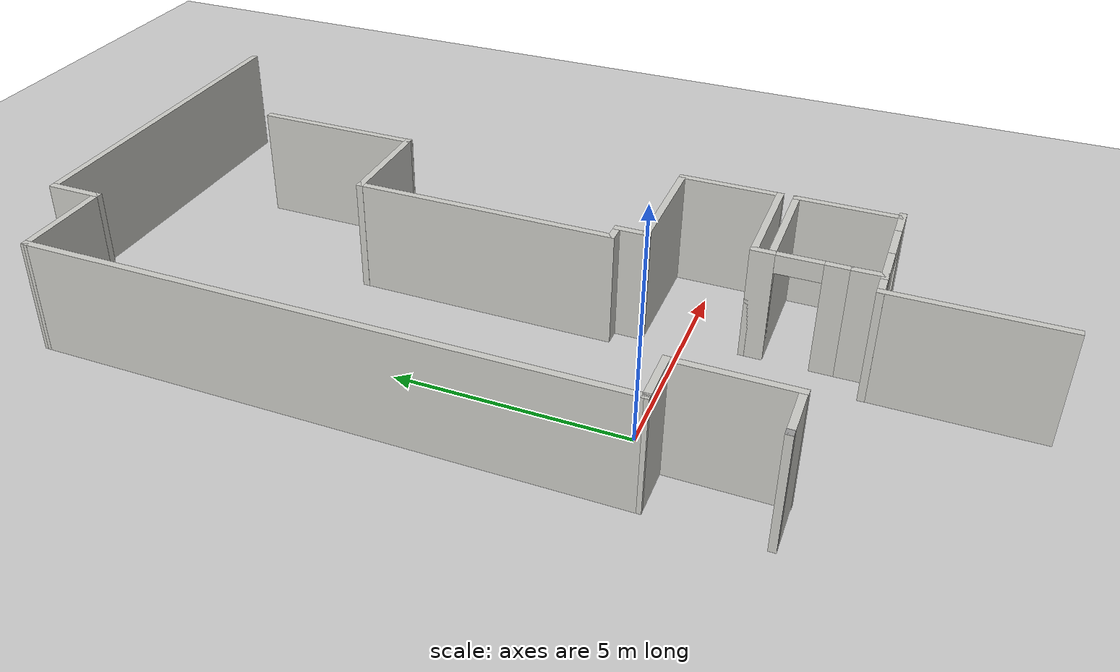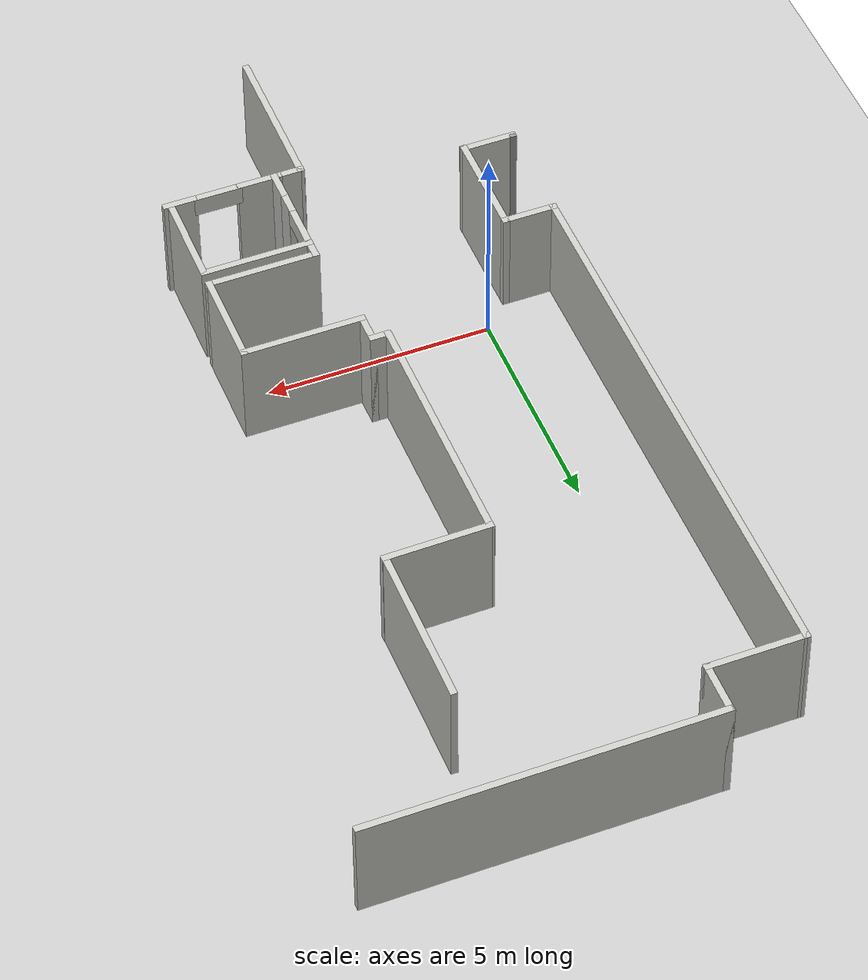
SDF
<sdf version="1.7">
 <world name="default">
  <model name="ground_plane">
   <static>1</static>
   <link name="link">
    <collision name="collision">
     <geometry><plane><normal>0 0 1</normal><size>100 100</size></plane></geometry>
     <surface>
      <contact><collide_bitmask>65535</collide_bitmask></contact>
      <friction><ode><mu>100</mu><mu2>50</mu2></ode></friction>
     </surface>
    </collision>
    <visual name="visual">
     <cast_shadows>0</cast_shadows>
     <geometry><plane><normal>0 0 1</normal><size>100 100</size></plane></geometry>
     <material>
      <script><uri>file://media/materials/scripts/gazebo.material</uri><name>Gazebo/Grey</name></script>
     </material>
    </visual>
   </link>
  </model>
  <model name="map_depo">
   <link name="Wall_11">
    <pose>-9.3996 12.685 0 0 -0 1.5708</pose>
    <visual name="Wall_11_Visual">
     <pose>0 0 1.25 0 -0 0</pose>
     <geometry><box><size>1.25 0.15 2.5</size></box></geometry>
     <material>
      <script><uri>file://media/materials/scripts/gazebo.material</uri><name>Gazebo/CeilingTiled</name></script>
      <ambient>1 1 1 1</ambient>
      <shader type="pixel"/>
     </material>
     <meta><layer>0</layer></meta>
    </visual>
    <collision name="Wall_11_Collision">
     <pose>0 0 1.25 0 -0 0</pose>
     <geometry><box><size>1.25 0.15 2.5</size></box></geometry>
     <surface>
      <friction>
       <ode><mu>1</mu><mu2>1</mu2><fdir1>0 0 0</fdir1><slip1>0</slip1><slip2>0</slip2></ode>
       <torsional>
        <coefficient>1</coefficient>
        <patch_radius>0</patch_radius>
        <surface_radius>0</surface_radius>
        <use_patch_radius>1</use_patch_radius>
        <ode><slip>0</slip></ode>
       </torsional>
      </friction>
      <bounce><restitution_coefficient>0</restitution_coefficient><threshold>1e+06</threshold></bounce>
      <contact>
       <collide_without_contact>0</collide_without_contact>
       <collide_without_contact_bitmask>1</collide_without_contact_bitmask>
       <collide_bitmask>1</collide_bitmask>
       <ode>
        <soft_cfm>0</soft_cfm>
        <soft_erp>0.2</soft_erp>
        <kp>1e+13</kp>
        <kd>1</kd>
        <max_vel>0.01</max_vel>
        <min_depth>0</min_depth>
       </ode>
       <bullet>
        <split_impulse>1</split_impulse>
        <split_impulse_penetration_threshold>-0.01</split_impulse_penetration_threshold>
        <soft_cfm>0</soft_cfm>
        <soft_erp>0.2</soft_erp>
        <kp>1e+13</kp>
        <kd>1</kd>
       </bullet>
      </contact>
     </surface>
    </collision>
   </link>
   <link name="Wall_12">
    <pose>-5.5996 13.235 0 0 -0 0</pose>
    <visual name="Wall_12_Visual">
     <pose>0 0 1.25 0 -0 0</pose>
     <geometry><box><size>7.75 0.15 2.5</size></box></geometry>
     <material>
      <script><uri>file://media/materials/scripts/gazebo.material</uri><name>Gazebo/CeilingTiled</name></script>
      <ambient>1 1 1 1</ambient>
      <shader type="pixel"/>
     </material>
     <meta><layer>0</layer></meta>
    </visual>
    <collision name="Wall_12_Collision">
     <pose>0 0 1.25 0 -0 0</pose>
     <geometry><box><size>7.75 0.15 2.5</size></box></geometry>
     <surface>
      <friction>
       <ode><mu>1</mu><mu2>1</mu2><fdir1>0 0 0</fdir1><slip1>0</slip1><slip2>0</slip2></ode>
       <torsional>
        <coefficient>1</coefficient>
        <patch_radius>0</patch_radius>
        <surface_radius>0</surface_radius>
        <use_patch_radius>1</use_patch_radius>
        <ode><slip>0</slip></ode>
       </torsional>
      </friction>
      <bounce><restitution_coefficient>0</restitution_coefficient><threshold>1e+06</threshold></bounce>
      <contact>
       <collide_without_contact>0</collide_without_contact>
       <collide_without_contact_bitmask>1</collide_without_contact_bitmask>
       <collide_bitmask>1</collide_bitmask>
       <ode>
        <soft_cfm>0</soft_cfm>
        <soft_erp>0.2</soft_erp>
        <kp>1e+13</kp>
        <kd>1</kd>
        <max_vel>0.01</max_vel>
        <min_depth>0</min_depth>
       </ode>
       <bullet>
        <split_impulse>1</split_impulse>
        <split_impulse_penetration_threshold>-0.01</split_impulse_penetration_threshold>
        <soft_cfm>0</soft_cfm>
        <soft_erp>0.2</soft_erp>
        <kp>1e+13</kp>
        <kd>1</kd>
       </bullet>
      </contact>
     </surface>
    </collision>
   </link>
   <link name="Wall_16">
    <pose>-4.6414 9.08497 0 0 0 -1.5708</pose>
    <visual name="Wall_16_Visual">
     <pose>0 0 1.25 0 -0 0</pose>
     <geometry><box><size>3.75 0.15 2.5</size></box></geometry>
     <material>
      <script><uri>file://media/materials/scripts/gazebo.material</uri><name>Gazebo/CeilingTiled</name></script>
      <ambient>1 1 1 1</ambient>
      <shader type="pixel"/>
     </material>
     <meta><layer>0</layer></meta>
    </visual>
    <collision name="Wall_16_Collision">
     <pose>0 0 1.25 0 -0 0</pose>
     <geometry><box><size>3.75 0.15 2.5</size></box></geometry>
     <surface>
      <friction>
       <ode><mu>1</mu><mu2>1</mu2><fdir1>0 0 0</fdir1><slip1>0</slip1><slip2>0</slip2></ode>
       <torsional>
        <coefficient>1</coefficient>
        <patch_radius>0</patch_radius>
        <surface_radius>0</surface_radius>
        <use_patch_radius>1</use_patch_radius>
        <ode><slip>0</slip></ode>
       </torsional>
      </friction>
      <bounce><restitution_coefficient>0</restitution_coefficient><threshold>1e+06</threshold></bounce>
      <contact>
       <collide_without_contact>0</collide_without_contact>
       <collide_without_contact_bitmask>1</collide_without_contact_bitmask>
       <collide_bitmask>1</collide_bitmask>
       <ode>
        <soft_cfm>0</soft_cfm>
        <soft_erp>0.2</soft_erp>
        <kp>1e+13</kp>
        <kd>1</kd>
        <max_vel>0.01</max_vel>
        <min_depth>0</min_depth>
       </ode>
       <bullet>
        <split_impulse>1</split_impulse>
        <split_impulse_penetration_threshold>-0.01</split_impulse_penetration_threshold>
        <soft_cfm>0</soft_cfm>
        <soft_erp>0.2</soft_erp>
        <kp>1e+13</kp>
        <kd>1</kd>
       </bullet>
      </contact>
     </surface>
    </collision>
   </link>
   <link name="Wall_17">
    <pose>-5.75463 7.27506 0 0 0 -3.13263</pose>
    <visual name="Wall_17_Visual">
     <pose>0 0 1.25 0 -0 0</pose>
     <geometry><box><size>2.39372 0.15 2.5</size></box></geometry>
     <material>
      <script><uri>file://media/materials/scripts/gazebo.material</uri><name>Gazebo/CeilingTiled</name></script>
      <ambient>1 1 1 1</ambient>
      <shader type="pixel"/>
     </material>
     <meta><layer>0</layer></meta>
    </visual>
    <collision name="Wall_17_Collision">
     <pose>0 0 1.25 0 -0 0</pose>
     <geometry><box><size>2.39372 0.15 2.5</size></box></geometry>
     <surface>
      <friction>
       <ode><mu>1</mu><mu2>1</mu2><fdir1>0 0 0</fdir1><slip1>0</slip1><slip2>0</slip2></ode>
       <torsional>
        <coefficient>1</coefficient>
        <patch_radius>0</patch_radius>
        <surface_radius>0</surface_radius>
        <use_patch_radius>1</use_patch_radius>
        <ode><slip>0</slip></ode>
       </torsional>
      </friction>
      <bounce><restitution_coefficient>0</restitution_coefficient><threshold>1e+06</threshold></bounce>
      <contact>
       <collide_without_contact>0</collide_without_contact>
       <collide_without_contact_bitmask>1</collide_without_contact_bitmask>
       <collide_bitmask>1</collide_bitmask>
       <ode>
        <soft_cfm>0</soft_cfm>
        <soft_erp>0.2</soft_erp>
        <kp>1e+13</kp>
        <kd>1</kd>
        <max_vel>0.01</max_vel>
        <min_depth>0</min_depth>
       </ode>
       <bullet>
        <split_impulse>1</split_impulse>
        <split_impulse_penetration_threshold>-0.01</split_impulse_penetration_threshold>
        <soft_cfm>0</soft_cfm>
        <soft_erp>0.2</soft_erp>
        <kp>1e+13</kp>
        <kd>1</kd>
       </bullet>
      </contact>
     </surface>
    </collision>
   </link>
   <link name="Wall_18">
    <pose>-6.87312 4.46486 0 0 0 -1.5708</pose>
    <visual name="Wall_18_Visual">
     <pose>0 0 1.25 0 -0 0</pose>
     <geometry><box><size>5.75 0.15 2.5</size></box></geometry>
     <material>
      <script><uri>file://media/materials/scripts/gazebo.material</uri><name>Gazebo/CeilingTiled</name></script>
      <ambient>1 1 1 1</ambient>
      <shader type="pixel"/>
     </material>
     <meta><layer>0</layer></meta>
    </visual>
    <collision name="Wall_18_Collision">
     <pose>0 0 1.25 0 -0 0</pose>
     <geometry><box><size>5.75 0.15 2.5</size></box></geometry>
     <surface>
      <friction>
       <ode><mu>1</mu><mu2>1</mu2><fdir1>0 0 0</fdir1><slip1>0</slip1><slip2>0</slip2></ode>
       <torsional>
        <coefficient>1</coefficient>
        <patch_radius>0</patch_radius>
        <surface_radius>0</surface_radius>
        <use_patch_radius>1</use_patch_radius>
        <ode><slip>0</slip></ode>
       </torsional>
      </friction>
      <bounce><restitution_coefficient>0</restitution_coefficient><threshold>1e+06</threshold></bounce>
      <contact>
       <collide_without_contact>0</collide_without_contact>
       <collide_without_contact_bitmask>1</collide_without_contact_bitmask>
       <collide_bitmask>1</collide_bitmask>
       <ode>
        <soft_cfm>0</soft_cfm>
        <soft_erp>0.2</soft_erp>
        <kp>1e+13</kp>
        <kd>1</kd>
        <max_vel>0.01</max_vel>
        <min_depth>0</min_depth>
       </ode>
       <bullet>
        <split_impulse>1</split_impulse>
        <split_impulse_penetration_threshold>-0.01</split_impulse_penetration_threshold>
        <soft_cfm>0</soft_cfm>
        <soft_erp>0.2</soft_erp>
        <kp>1e+13</kp>
        <kd>1</kd>
       </bullet>
      </contact>
     </surface>
    </collision>
   </link>
   <link name="Wall_20">
    <pose>-6.69812 1.66486 0 0 -0 0</pose>
    <visual name="Wall_20_Visual">
     <pose>0 0 1.25 0 -0 0</pose>
     <geometry><box><size>0.5 0.15 2.5</size></box></geometry>
     <material>
      <script><uri>file://media/materials/scripts/gazebo.material</uri><name>Gazebo/CeilingTiled</name></script>
      <ambient>1 1 1 1</ambient>
      <shader type="pixel"/>
     </material>
     <meta><layer>0</layer></meta>
    </visual>
    <collision name="Wall_20_Collision">
     <pose>0 0 1.25 0 -0 0</pose>
     <geometry><box><size>0.5 0.15 2.5</size></box></geometry>
     <surface>
      <friction>
       <ode><mu>1</mu><mu2>1</mu2><fdir1>0 0 0</fdir1><slip1>0</slip1><slip2>0</slip2></ode>
       <torsional>
        <coefficient>1</coefficient>
        <patch_radius>0</patch_radius>
        <surface_radius>0</surface_radius>
        <use_patch_radius>1</use_patch_radius>
        <ode><slip>0</slip></ode>
       </torsional>
      </friction>
      <bounce><restitution_coefficient>0</restitution_coefficient><threshold>1e+06</threshold></bounce>
      <contact>
       <collide_without_contact>0</collide_without_contact>
       <collide_without_contact_bitmask>1</collide_without_contact_bitmask>
       <collide_bitmask>1</collide_bitmask>
       <ode>
        <soft_cfm>0</soft_cfm>
        <soft_erp>0.2</soft_erp>
        <kp>1e+13</kp>
        <kd>1</kd>
        <max_vel>0.01</max_vel>
        <min_depth>0</min_depth>
       </ode>
       <bullet>
        <split_impulse>1</split_impulse>
        <split_impulse_penetration_threshold>-0.01</split_impulse_penetration_threshold>
        <soft_cfm>0</soft_cfm>
        <soft_erp>0.2</soft_erp>
        <kp>1e+13</kp>
        <kd>1</kd>
       </bullet>
      </contact>
     </surface>
    </collision>
   </link>
   <link name="Wall_21">
    <pose>-6.52312 1.36486 0 0 0 -1.5708</pose>
    <visual name="Wall_21_Visual">
     <pose>0 0 1.25 0 -0 0</pose>
     <geometry><box><size>0.75 0.15 2.5</size></box></geometry>
     <material>
      <script><uri>file://media/materials/scripts/gazebo.material</uri><name>Gazebo/CeilingTiled</name></script>
      <ambient>1 1 1 1</ambient>
      <shader type="pixel"/>
     </material>
     <meta><layer>0</layer></meta>
    </visual>
    <collision name="Wall_21_Collision">
     <pose>0 0 1.25 0 -0 0</pose>
     <geometry><box><size>0.75 0.15 2.5</size></box></geometry>
     <surface>
      <friction>
       <ode><mu>1</mu><mu2>1</mu2><fdir1>0 0 0</fdir1><slip1>0</slip1><slip2>0</slip2></ode>
       <torsional>
        <coefficient>1</coefficient>
        <patch_radius>0</patch_radius>
        <surface_radius>0</surface_radius>
        <use_patch_radius>1</use_patch_radius>
        <ode><slip>0</slip></ode>
       </torsional>
      </friction>
      <bounce><restitution_coefficient>0</restitution_coefficient><threshold>1e+06</threshold></bounce>
      <contact>
       <collide_without_contact>0</collide_without_contact>
       <collide_without_contact_bitmask>1</collide_without_contact_bitmask>
       <collide_bitmask>1</collide_bitmask>
       <ode>
        <soft_cfm>0</soft_cfm>
        <soft_erp>0.2</soft_erp>
        <kp>1e+13</kp>
        <kd>1</kd>
        <max_vel>0.01</max_vel>
        <min_depth>0</min_depth>
       </ode>
       <bullet>
        <split_impulse>1</split_impulse>
        <split_impulse_penetration_threshold>-0.01</split_impulse_penetration_threshold>
        <soft_cfm>0</soft_cfm>
        <soft_erp>0.2</soft_erp>
        <kp>1e+13</kp>
        <kd>1</kd>
       </bullet>
      </contact>
     </surface>
    </collision>
   </link>
   <link name="Wall_22">
    <pose>-5.22312 1.06486 0 0 -0 0</pose>
    <visual name="Wall_22_Visual">
     <pose>0 0 1.25 0 -0 0</pose>
     <geometry><box><size>2.75 0.15 2.5</size></box></geometry>
     <material>
      <script><uri>file://media/materials/scripts/gazebo.material</uri><name>Gazebo/CeilingTiled</name></script>
      <ambient>1 1 1 1</ambient>
      <shader type="pixel"/>
     </material>
     <meta><layer>0</layer></meta>
    </visual>
    <collision name="Wall_22_Collision">
     <pose>0 0 1.25 0 -0 0</pose>
     <geometry><box><size>2.75 0.15 2.5</size></box></geometry>
     <surface>
      <friction>
       <ode><mu>1</mu><mu2>1</mu2><fdir1>0 0 0</fdir1><slip1>0</slip1><slip2>0</slip2></ode>
       <torsional>
        <coefficient>1</coefficient>
        <patch_radius>0</patch_radius>
        <surface_radius>0</surface_radius>
        <use_patch_radius>1</use_patch_radius>
        <ode><slip>0</slip></ode>
       </torsional>
      </friction>
      <bounce><restitution_coefficient>0</restitution_coefficient><threshold>1e+06</threshold></bounce>
      <contact>
       <collide_without_contact>0</collide_without_contact>
       <collide_without_contact_bitmask>1</collide_without_contact_bitmask>
       <collide_bitmask>1</collide_bitmask>
       <ode>
        <soft_cfm>0</soft_cfm>
        <soft_erp>0.2</soft_erp>
        <kp>1e+13</kp>
        <kd>1</kd>
        <max_vel>0.01</max_vel>
        <min_depth>0</min_depth>
       </ode>
       <bullet>
        <split_impulse>1</split_impulse>
        <split_impulse_penetration_threshold>-0.01</split_impulse_penetration_threshold>
        <soft_cfm>0</soft_cfm>
        <soft_erp>0.2</soft_erp>
        <kp>1e+13</kp>
        <kd>1</kd>
       </bullet>
      </contact>
     </surface>
    </collision>
   </link>
   <link name="Wall_23">
    <pose>-3.92312 0.014856 0 0 0 -1.5708</pose>
    <visual name="Wall_23_Visual">
     <pose>0 0 1.25 0 -0 0</pose>
     <geometry><box><size>2.25 0.15 2.5</size></box></geometry>
     <material>
      <script><uri>file://media/materials/scripts/gazebo.material</uri><name>Gazebo/CeilingTiled</name></script>
      <ambient>1 1 1 1</ambient>
      <shader type="pixel"/>
     </material>
     <meta><layer>0</layer></meta>
    </visual>
    <collision name="Wall_23_Collision">
     <pose>0 0 1.25 0 -0 0</pose>
     <geometry><box><size>2.25 0.15 2.5</size></box></geometry>
     <surface>
      <friction>
       <ode><mu>1</mu><mu2>1</mu2><fdir1>0 0 0</fdir1><slip1>0</slip1><slip2>0</slip2></ode>
       <torsional>
        <coefficient>1</coefficient>
        <patch_radius>0</patch_radius>
        <surface_radius>0</surface_radius>
        <use_patch_radius>1</use_patch_radius>
        <ode><slip>0</slip></ode>
       </torsional>
      </friction>
      <bounce><restitution_coefficient>0</restitution_coefficient><threshold>1e+06</threshold></bounce>
      <contact>
       <collide_without_contact>0</collide_without_contact>
       <collide_without_contact_bitmask>1</collide_without_contact_bitmask>
       <collide_bitmask>1</collide_bitmask>
       <ode>
        <soft_cfm>0</soft_cfm>
        <soft_erp>0.2</soft_erp>
        <kp>1e+13</kp>
        <kd>1</kd>
        <max_vel>0.01</max_vel>
        <min_depth>0</min_depth>
       </ode>
       <bullet>
        <split_impulse>1</split_impulse>
        <split_impulse_penetration_threshold>-0.01</split_impulse_penetration_threshold>
        <soft_cfm>0</soft_cfm>
        <soft_erp>0.2</soft_erp>
        <kp>1e+13</kp>
        <kd>1</kd>
       </bullet>
      </contact>
     </surface>
    </collision>
   </link>
   <link name="Wall_24">
    <pose>-5.09812 -1.03514 0 0 -0 3.14159</pose>
    <visual name="Wall_24_Visual">
     <pose>0 0 1.25 0 -0 0</pose>
     <geometry><box><size>2.5 0.15 2.5</size></box></geometry>
     <material>
      <script><uri>file://media/materials/scripts/gazebo.material</uri><name>Gazebo/CeilingTiled</name></script>
      <ambient>1 1 1 1</ambient>
      <shader type="pixel"/>
     </material>
     <meta><layer>0</layer></meta>
    </visual>
    <collision name="Wall_24_Collision">
     <pose>0 0 1.25 0 -0 0</pose>
     <geometry><box><size>2.5 0.15 2.5</size></box></geometry>
     <surface>
      <friction>
       <ode><mu>1</mu><mu2>1</mu2><fdir1>0 0 0</fdir1><slip1>0</slip1><slip2>0</slip2></ode>
       <torsional>
        <coefficient>1</coefficient>
        <patch_radius>0</patch_radius>
        <surface_radius>0</surface_radius>
        <use_patch_radius>1</use_patch_radius>
        <ode><slip>0</slip></ode>
       </torsional>
      </friction>
      <bounce><restitution_coefficient>0</restitution_coefficient><threshold>1e+06</threshold></bounce>
      <contact>
       <collide_without_contact>0</collide_without_contact>
       <collide_without_contact_bitmask>1</collide_without_contact_bitmask>
       <collide_bitmask>1</collide_bitmask>
       <ode>
        <soft_cfm>0</soft_cfm>
        <soft_erp>0.2</soft_erp>
        <kp>1e+13</kp>
        <kd>1</kd>
        <max_vel>0.01</max_vel>
        <min_depth>0</min_depth>
       </ode>
       <bullet>
        <split_impulse>1</split_impulse>
        <split_impulse_penetration_threshold>-0.01</split_impulse_penetration_threshold>
        <soft_cfm>0</soft_cfm>
        <soft_erp>0.2</soft_erp>
        <kp>1e+13</kp>
        <kd>1</kd>
       </bullet>
      </contact>
     </surface>
    </collision>
   </link>
   <link name="Wall_25">
    <pose>-6.27312 -1.21014 0 0 0 -1.5708</pose>
    <visual name="Wall_25_Visual">
     <pose>0 0 1.25 0 -0 0</pose>
     <geometry><box><size>0.5 0.15 2.5</size></box></geometry>
     <material>
      <script><uri>file://media/materials/scripts/gazebo.material</uri><name>Gazebo/CeilingTiled</name></script>
      <ambient>1 1 1 1</ambient>
      <shader type="pixel"/>
     </material>
     <meta><layer>0</layer></meta>
    </visual>
    <collision name="Wall_25_Collision">
     <pose>0 0 1.25 0 -0 0</pose>
     <geometry><box><size>0.5 0.15 2.5</size></box></geometry>
     <surface>
      <friction>
       <ode><mu>1</mu><mu2>1</mu2><fdir1>0 0 0</fdir1><slip1>0</slip1><slip2>0</slip2></ode>
       <torsional>
        <coefficient>1</coefficient>
        <patch_radius>0</patch_radius>
        <surface_radius>0</surface_radius>
        <use_patch_radius>1</use_patch_radius>
        <ode><slip>0</slip></ode>
       </torsional>
      </friction>
      <bounce><restitution_coefficient>0</restitution_coefficient><threshold>1e+06</threshold></bounce>
      <contact>
       <collide_without_contact>0</collide_without_contact>
       <collide_without_contact_bitmask>1</collide_without_contact_bitmask>
       <collide_bitmask>1</collide_bitmask>
       <ode>
        <soft_cfm>0</soft_cfm>
        <soft_erp>0.2</soft_erp>
        <kp>1e+13</kp>
        <kd>1</kd>
        <max_vel>0.01</max_vel>
        <min_depth>0</min_depth>
       </ode>
       <bullet>
        <split_impulse>1</split_impulse>
        <split_impulse_penetration_threshold>-0.01</split_impulse_penetration_threshold>
        <soft_cfm>0</soft_cfm>
        <soft_erp>0.2</soft_erp>
        <kp>1e+13</kp>
        <kd>1</kd>
       </bullet>
      </contact>
     </surface>
    </collision>
   </link>
   <link name="Wall_27">
    <pose>-6.27245 -2.66028 0 0 0 -1.5708</pose>
    <inertial>
     <inertia><ixx>0</ixx><ixy>0</ixy><ixz>0</ixz><iyy>0</iyy><iyz>0</iyz><izz>0</izz></inertia>
     <mass>0</mass>
    </inertial>
    <visual name="Wall_27_Visual">
     <pose>0 0 1.25 0 -0 0</pose>
     <geometry><box><size>0.527686 0.15 2.5</size></box></geometry>
     <material>
      <script><uri>file://media/materials/scripts/gazebo.material</uri><name>Gazebo/CeilingTiled</name></script>
      <ambient>1 1 1 1</ambient>
      <shader type="pixel"/>
     </material>
     <meta><layer>0</layer></meta>
    </visual>
    <collision name="Wall_27_Collision">
     <pose>0 0 1.25 0 -0 0</pose>
     <geometry><box><size>0.527686 0.15 2.5</size></box></geometry>
     <surface>
      <friction>
       <ode><mu>1</mu><mu2>1</mu2><fdir1>0 0 0</fdir1><slip1>0</slip1><slip2>0</slip2></ode>
       <torsional>
        <coefficient>1</coefficient>
        <patch_radius>0</patch_radius>
        <surface_radius>0</surface_radius>
        <use_patch_radius>1</use_patch_radius>
        <ode><slip>0</slip></ode>
       </torsional>
      </friction>
      <bounce><restitution_coefficient>0</restitution_coefficient><threshold>1e+06</threshold></bounce>
      <contact>
       <collide_without_contact>0</collide_without_contact>
       <collide_without_contact_bitmask>1</collide_without_contact_bitmask>
       <collide_bitmask>1</collide_bitmask>
       <ode>
        <soft_cfm>0</soft_cfm>
        <soft_erp>0.2</soft_erp>
        <kp>1e+13</kp>
        <kd>1</kd>
        <max_vel>0.01</max_vel>
        <min_depth>0</min_depth>
       </ode>
       <bullet>
        <split_impulse>1</split_impulse>
        <split_impulse_penetration_threshold>-0.01</split_impulse_penetration_threshold>
        <soft_cfm>0</soft_cfm>
        <soft_erp>0.2</soft_erp>
        <kp>1e+13</kp>
        <kd>1</kd>
       </bullet>
      </contact>
     </surface>
    </collision>
   </link>
   <link name="Wall_27_clone">
    <pose>-6.27049 -1.92748 1.04146 0 0 -1.5708</pose>
    <inertial>
     <inertia><ixx>0</ixx><ixy>0</ixy><ixz>0</ixz><iyy>0</iyy><iyz>0</iyz><izz>0</izz></inertia>
     <mass>0</mass>
    </inertial>
    <visual name="Wall_27_Visual">
     <pose>0 0 1.25 0 -0 0</pose>
     <geometry><box><size>1.00092 0.15 0.41421</size></box></geometry>
     <material>
      <script><uri>file://media/materials/scripts/gazebo.material</uri><name>Gazebo/CeilingTiled</name></script>
      <ambient>1 1 1 1</ambient>
      <shader type="pixel"/>
     </material>
     <meta><layer>0</layer></meta>
    </visual>
    <collision name="Wall_27_Collision">
     <pose>0 0 1.25 0 -0 0</pose>
     <geometry><box><size>1.00092 0.15 0.41421</size></box></geometry>
     <surface>
      <friction>
       <ode><mu>1</mu><mu2>1</mu2><fdir1>0 0 0</fdir1><slip1>0</slip1><slip2>0</slip2></ode>
       <torsional>
        <coefficient>1</coefficient>
        <patch_radius>0</patch_radius>
        <surface_radius>0</surface_radius>
        <use_patch_radius>1</use_patch_radius>
        <ode><slip>0</slip></ode>
       </torsional>
      </friction>
      <bounce><restitution_coefficient>0</restitution_coefficient><threshold>1e+06</threshold></bounce>
      <contact>
       <collide_without_contact>0</collide_without_contact>
       <collide_without_contact_bitmask>1</collide_without_contact_bitmask>
       <collide_bitmask>1</collide_bitmask>
       <ode>
        <soft_cfm>0</soft_cfm>
        <soft_erp>0.2</soft_erp>
        <kp>1e+13</kp>
        <kd>1</kd>
        <max_vel>0.01</max_vel>
        <min_depth>0</min_depth>
       </ode>
       <bullet>
        <split_impulse>1</split_impulse>
        <split_impulse_penetration_threshold>-0.01</split_impulse_penetration_threshold>
        <soft_cfm>0</soft_cfm>
        <soft_erp>0.2</soft_erp>
        <kp>1e+13</kp>
        <kd>1</kd>
       </bullet>
      </contact>
     </surface>
    </collision>
   </link>
   <link name="Wall_29">
    <pose>-6.27021 -3.24001 0 0 0 -1.56052</pose>
    <visual name="Wall_29_Visual">
     <pose>0 0 1.25 0 -0 0</pose>
     <geometry><box><size>0.709868 0.15 2.5</size></box></geometry>
     <material>
      <script><uri>file://media/materials/scripts/gazebo.material</uri><name>Gazebo/CeilingTiled</name></script>
      <ambient>1 1 1 1</ambient>
      <shader type="pixel"/>
     </material>
     <meta><layer>0</layer></meta>
    </visual>
    <collision name="Wall_29_Collision">
     <pose>0 0 1.25 0 -0 0</pose>
     <geometry><box><size>0.709868 0.15 2.5</size></box></geometry>
     <surface>
      <friction>
       <ode><mu>1</mu><mu2>1</mu2><fdir1>0 0 0</fdir1><slip1>0</slip1><slip2>0</slip2></ode>
       <torsional>
        <coefficient>1</coefficient>
        <patch_radius>0</patch_radius>
        <surface_radius>0</surface_radius>
        <use_patch_radius>1</use_patch_radius>
        <ode><slip>0</slip></ode>
       </torsional>
      </friction>
      <bounce><restitution_coefficient>0</restitution_coefficient><threshold>1e+06</threshold></bounce>
      <contact>
       <collide_without_contact>0</collide_without_contact>
       <collide_without_contact_bitmask>1</collide_without_contact_bitmask>
       <collide_bitmask>1</collide_bitmask>
       <ode>
        <soft_cfm>0</soft_cfm>
        <soft_erp>0.2</soft_erp>
        <kp>1e+13</kp>
        <kd>1</kd>
        <max_vel>0.01</max_vel>
        <min_depth>0</min_depth>
       </ode>
       <bullet>
        <split_impulse>1</split_impulse>
        <split_impulse_penetration_threshold>-0.01</split_impulse_penetration_threshold>
        <soft_cfm>0</soft_cfm>
        <soft_erp>0.2</soft_erp>
        <kp>1e+13</kp>
        <kd>1</kd>
       </bullet>
      </contact>
     </surface>
    </collision>
   </link>
   <link name="Wall_30">
    <pose>-6.55878 -3.51973 0 0 -0 3.14159</pose>
    <visual name="Wall_30_Visual">
     <pose>0 0 1.25 0 -0 0</pose>
     <geometry><box><size>0.75 0.15 2.5</size></box></geometry>
     <material>
      <script><uri>file://media/materials/scripts/gazebo.material</uri><name>Gazebo/CeilingTiled</name></script>
      <ambient>1 1 1 1</ambient>
      <shader type="pixel"/>
     </material>
     <meta><layer>0</layer></meta>
    </visual>
    <collision name="Wall_30_Collision">
     <pose>0 0 1.25 0 -0 0</pose>
     <geometry><box><size>0.75 0.15 2.5</size></box></geometry>
     <surface>
      <friction>
       <ode><mu>1</mu><mu2>1</mu2><fdir1>0 0 0</fdir1><slip1>0</slip1><slip2>0</slip2></ode>
       <torsional>
        <coefficient>1</coefficient>
        <patch_radius>0</patch_radius>
        <surface_radius>0</surface_radius>
        <use_patch_radius>1</use_patch_radius>
        <ode><slip>0</slip></ode>
       </torsional>
      </friction>
      <bounce><restitution_coefficient>0</restitution_coefficient><threshold>1e+06</threshold></bounce>
      <contact>
       <collide_without_contact>0</collide_without_contact>
       <collide_without_contact_bitmask>1</collide_without_contact_bitmask>
       <collide_bitmask>1</collide_bitmask>
       <ode>
        <soft_cfm>0</soft_cfm>
        <soft_erp>0.2</soft_erp>
        <kp>1e+13</kp>
        <kd>1</kd>
        <max_vel>0.01</max_vel>
        <min_depth>0</min_depth>
       </ode>
       <bullet>
        <split_impulse>1</split_impulse>
        <split_impulse_penetration_threshold>-0.01</split_impulse_penetration_threshold>
        <soft_cfm>0</soft_cfm>
        <soft_erp>0.2</soft_erp>
        <kp>1e+13</kp>
        <kd>1</kd>
       </bullet>
      </contact>
     </surface>
    </collision>
   </link>
   <link name="Wall_32">
    <pose>-6.8559 -5.21486 0 0 0 -1.57249</pose>
    <visual name="Wall_32_Visual">
     <pose>0 0 1.25 0 -0 0</pose>
     <geometry><box><size>3.54027 0.15 2.5</size></box></geometry>
     <material>
      <script><uri>file://media/materials/scripts/gazebo.material</uri><name>Gazebo/CeilingTiled</name></script>
      <ambient>1 1 1 1</ambient>
      <shader type="pixel"/>
     </material>
     <meta><layer>0</layer></meta>
    </visual>
    <collision name="Wall_32_Collision">
     <pose>0 0 1.25 0 -0 0</pose>
     <geometry><box><size>3.54027 0.15 2.5</size></box></geometry>
     <surface>
      <friction>
       <ode><mu>1</mu><mu2>1</mu2><fdir1>0 0 0</fdir1><slip1>0</slip1><slip2>0</slip2></ode>
       <torsional>
        <coefficient>1</coefficient>
        <patch_radius>0</patch_radius>
        <surface_radius>0</surface_radius>
        <use_patch_radius>1</use_patch_radius>
        <ode><slip>0</slip></ode>
       </torsional>
      </friction>
      <bounce><restitution_coefficient>0</restitution_coefficient><threshold>1e+06</threshold></bounce>
      <contact>
       <collide_without_contact>0</collide_without_contact>
       <collide_without_contact_bitmask>1</collide_without_contact_bitmask>
       <collide_bitmask>1</collide_bitmask>
       <ode>
        <soft_cfm>0</soft_cfm>
        <soft_erp>0.2</soft_erp>
        <kp>1e+13</kp>
        <kd>1</kd>
        <max_vel>0.01</max_vel>
        <min_depth>0</min_depth>
       </ode>
       <bullet>
        <split_impulse>1</split_impulse>
        <split_impulse_penetration_threshold>-0.01</split_impulse_penetration_threshold>
        <soft_cfm>0</soft_cfm>
        <soft_erp>0.2</soft_erp>
        <kp>1e+13</kp>
        <kd>1</kd>
       </bullet>
      </contact>
     </surface>
    </collision>
   </link>
   <link name="Wall_4">
    <pose>-11.4734 5.83174 0 0 -0 1.57495</pose>
    <visual name="Wall_4_Visual">
     <pose>0 0 1.25 0 -0 0</pose>
     <geometry><box><size>12.7566 0.15 2.5</size></box></geometry>
     <material>
      <script><uri>file://media/materials/scripts/gazebo.material</uri><name>Gazebo/CeilingTiled</name></script>
      <ambient>1 1 1 1</ambient>
      <shader type="pixel"/>
     </material>
     <meta><layer>0</layer></meta>
    </visual>
    <collision name="Wall_4_Collision">
     <pose>0 0 1.25 0 -0 0</pose>
     <geometry><box><size>12.7566 0.15 2.5</size></box></geometry>
     <surface>
      <friction>
       <ode><mu>1</mu><mu2>1</mu2><fdir1>0 0 0</fdir1><slip1>0</slip1><slip2>0</slip2></ode>
       <torsional>
        <coefficient>1</coefficient>
        <patch_radius>0</patch_radius>
        <surface_radius>0</surface_radius>
        <use_patch_radius>1</use_patch_radius>
        <ode><slip>0</slip></ode>
       </torsional>
      </friction>
      <bounce><restitution_coefficient>0</restitution_coefficient><threshold>1e+06</threshold></bounce>
      <contact>
       <collide_without_contact>0</collide_without_contact>
       <collide_without_contact_bitmask>1</collide_without_contact_bitmask>
       <collide_bitmask>1</collide_bitmask>
       <ode>
        <soft_cfm>0</soft_cfm>
        <soft_erp>0.2</soft_erp>
        <kp>1e+13</kp>
        <kd>1</kd>
        <max_vel>0.01</max_vel>
        <min_depth>0</min_depth>
       </ode>
       <bullet>
        <split_impulse>1</split_impulse>
        <split_impulse_penetration_threshold>-0.01</split_impulse_penetration_threshold>
        <soft_cfm>0</soft_cfm>
        <soft_erp>0.2</soft_erp>
        <kp>1e+13</kp>
        <kd>1</kd>
       </bullet>
      </contact>
     </surface>
    </collision>
   </link>
   <link name="Wall_48">
    <pose>-11.4588 -2.80998 0 0 -0 0</pose>
    <visual name="Wall_48_Visual">
     <pose>0 0 1.25 0 -0 0</pose>
     <geometry><box><size>0.15 0.15 2.5</size></box></geometry>
     <material>
      <script><uri>file://media/materials/scripts/gazebo.material</uri><name>Gazebo/Grey</name></script>
      <ambient>1 1 1 1</ambient>
      <shader type="pixel"/>
     </material>
     <meta><layer>0</layer></meta>
    </visual>
    <collision name="Wall_48_Collision">
     <pose>0 0 1.25 0 -0 0</pose>
     <geometry><box><size>0.15 0.15 2.5</size></box></geometry>
     <surface>
      <friction>
       <ode><mu>1</mu><mu2>1</mu2><fdir1>0 0 0</fdir1><slip1>0</slip1><slip2>0</slip2></ode>
       <torsional>
        <coefficient>1</coefficient>
        <patch_radius>0</patch_radius>
        <surface_radius>0</surface_radius>
        <use_patch_radius>1</use_patch_radius>
        <ode><slip>0</slip></ode>
       </torsional>
      </friction>
      <bounce><restitution_coefficient>0</restitution_coefficient><threshold>1e+06</threshold></bounce>
      <contact>
       <collide_without_contact>0</collide_without_contact>
       <collide_without_contact_bitmask>1</collide_without_contact_bitmask>
       <collide_bitmask>1</collide_bitmask>
       <ode>
        <soft_cfm>0</soft_cfm>
        <soft_erp>0.2</soft_erp>
        <kp>1e+13</kp>
        <kd>1</kd>
        <max_vel>0.01</max_vel>
        <min_depth>0</min_depth>
       </ode>
       <bullet>
        <split_impulse>1</split_impulse>
        <split_impulse_penetration_threshold>-0.01</split_impulse_penetration_threshold>
        <soft_cfm>0</soft_cfm>
        <soft_erp>0.2</soft_erp>
        <kp>1e+13</kp>
        <kd>1</kd>
       </bullet>
      </contact>
     </surface>
    </collision>
   </link>
   <link name="Wall_49">
    <pose>-10.903 -2.80998 0 0 -0 0</pose>
    <visual name="Wall_49_Visual">
     <pose>0 0 1.25 0 -0 0</pose>
     <geometry><box><size>1.26245 0.15 2.5</size></box></geometry>
     <material>
      <script><uri>file://media/materials/scripts/gazebo.material</uri><name>Gazebo/CeilingTiled</name></script>
      <ambient>1 1 1 1</ambient>
      <shader type="pixel"/>
     </material>
     <meta><layer>0</layer></meta>
    </visual>
    <collision name="Wall_49_Collision">
     <pose>0 0 1.25 0 -0 0</pose>
     <geometry><box><size>1.26245 0.15 2.5</size></box></geometry>
     <surface>
      <friction>
       <ode><mu>1</mu><mu2>1</mu2><fdir1>0 0 0</fdir1><slip1>0</slip1><slip2>0</slip2></ode>
       <torsional>
        <coefficient>1</coefficient>
        <patch_radius>0</patch_radius>
        <surface_radius>0</surface_radius>
        <use_patch_radius>1</use_patch_radius>
        <ode><slip>0</slip></ode>
       </torsional>
      </friction>
      <bounce><restitution_coefficient>0</restitution_coefficient><threshold>1e+06</threshold></bounce>
      <contact>
       <collide_without_contact>0</collide_without_contact>
       <collide_without_contact_bitmask>1</collide_without_contact_bitmask>
       <collide_bitmask>1</collide_bitmask>
       <ode>
        <soft_cfm>0</soft_cfm>
        <soft_erp>0.2</soft_erp>
        <kp>1e+13</kp>
        <kd>1</kd>
        <max_vel>0.01</max_vel>
        <min_depth>0</min_depth>
       </ode>
       <bullet>
        <split_impulse>1</split_impulse>
        <split_impulse_penetration_threshold>-0.01</split_impulse_penetration_threshold>
        <soft_cfm>0</soft_cfm>
        <soft_erp>0.2</soft_erp>
        <kp>1e+13</kp>
        <kd>1</kd>
       </bullet>
      </contact>
     </surface>
    </collision>
   </link>
   <link name="Wall_5">
    <pose>-10.4496 12.135 0 0 -0 0</pose>
    <visual name="Wall_5_Visual">
     <pose>0 0 1.25 0 -0 0</pose>
     <geometry><box><size>2.25 0.15 2.5</size></box></geometry>
     <material>
      <script><uri>file://media/materials/scripts/gazebo.material</uri><name>Gazebo/CeilingTiled</name></script>
      <ambient>1 1 1 1</ambient>
      <shader type="pixel"/>
     </material>
     <meta><layer>0</layer></meta>
    </visual>
    <collision name="Wall_5_Collision">
     <pose>0 0 1.25 0 -0 0</pose>
     <geometry><box><size>2.25 0.15 2.5</size></box></geometry>
     <surface>
      <friction>
       <ode><mu>1</mu><mu2>1</mu2><fdir1>0 0 0</fdir1><slip1>0</slip1><slip2>0</slip2></ode>
       <torsional>
        <coefficient>1</coefficient>
        <patch_radius>0</patch_radius>
        <surface_radius>0</surface_radius>
        <use_patch_radius>1</use_patch_radius>
        <ode><slip>0</slip></ode>
       </torsional>
      </friction>
      <bounce><restitution_coefficient>0</restitution_coefficient><threshold>1e+06</threshold></bounce>
      <contact>
       <collide_without_contact>0</collide_without_contact>
       <collide_without_contact_bitmask>1</collide_without_contact_bitmask>
       <collide_bitmask>1</collide_bitmask>
       <ode>
        <soft_cfm>0</soft_cfm>
        <soft_erp>0.2</soft_erp>
        <kp>1e+13</kp>
        <kd>1</kd>
        <max_vel>0.01</max_vel>
        <min_depth>0</min_depth>
       </ode>
       <bullet>
        <split_impulse>1</split_impulse>
        <split_impulse_penetration_threshold>-0.01</split_impulse_penetration_threshold>
        <soft_cfm>0</soft_cfm>
        <soft_erp>0.2</soft_erp>
        <kp>1e+13</kp>
        <kd>1</kd>
       </bullet>
      </contact>
     </surface>
    </collision>
   </link>
   <link name="Wall_50">
    <pose>-10.3473 -1.64648 0 0 -0 1.5708</pose>
    <visual name="Wall_50_Visual">
     <pose>0 0 1.25 0 -0 0</pose>
     <geometry><box><size>2.5 0.15 2.5</size></box></geometry>
     <material>
      <script><uri>file://media/materials/scripts/gazebo.material</uri><name>Gazebo/CeilingTiled</name></script>
      <ambient>1 1 1 1</ambient>
      <shader type="pixel"/>
     </material>
     <meta><layer>0</layer></meta>
    </visual>
    <collision name="Wall_50_Collision">
     <pose>0 0 1.25 0 -0 0</pose>
     <geometry><box><size>2.5 0.15 2.5</size></box></geometry>
     <surface>
      <friction>
       <ode><mu>1</mu><mu2>1</mu2><fdir1>0 0 0</fdir1><slip1>0</slip1><slip2>0</slip2></ode>
       <torsional>
        <coefficient>1</coefficient>
        <patch_radius>0</patch_radius>
        <surface_radius>0</surface_radius>
        <use_patch_radius>1</use_patch_radius>
        <ode><slip>0</slip></ode>
       </torsional>
      </friction>
      <bounce><restitution_coefficient>0</restitution_coefficient><threshold>1e+06</threshold></bounce>
      <contact>
       <collide_without_contact>0</collide_without_contact>
       <collide_without_contact_bitmask>1</collide_without_contact_bitmask>
       <collide_bitmask>1</collide_bitmask>
       <ode>
        <soft_cfm>0</soft_cfm>
        <soft_erp>0.2</soft_erp>
        <kp>1e+13</kp>
        <kd>1</kd>
        <max_vel>0.01</max_vel>
        <min_depth>0</min_depth>
       </ode>
       <bullet>
        <split_impulse>1</split_impulse>
        <split_impulse_penetration_threshold>-0.01</split_impulse_penetration_threshold>
        <soft_cfm>0</soft_cfm>
        <soft_erp>0.2</soft_erp>
        <kp>1e+13</kp>
        <kd>1</kd>
       </bullet>
      </contact>
     </surface>
    </collision>
   </link>
   <link name="Wall_56">
    <pose>-10.8973 -0.471484 0 0 -0 0</pose>
    <visual name="Wall_56_Visual">
     <pose>0 0 1.25 0 -0 0</pose>
     <geometry><box><size>1.25 0.15 2.5</size></box></geometry>
     <material>
      <script><uri>file://media/materials/scripts/gazebo.material</uri><name>Gazebo/CeilingTiled</name></script>
      <ambient>1 1 1 1</ambient>
      <shader type="pixel"/>
     </material>
     <meta><layer>0</layer></meta>
    </visual>
    <collision name="Wall_56_Collision">
     <pose>0 0 1.25 0 -0 0</pose>
     <geometry><box><size>1.25 0.15 2.5</size></box></geometry>
     <surface>
      <friction>
       <ode><mu>1</mu><mu2>1</mu2><fdir1>0 0 0</fdir1><slip1>0</slip1><slip2>0</slip2></ode>
       <torsional>
        <coefficient>1</coefficient>
        <patch_radius>0</patch_radius>
        <surface_radius>0</surface_radius>
        <use_patch_radius>1</use_patch_radius>
        <ode><slip>0</slip></ode>
       </torsional>
      </friction>
      <bounce><restitution_coefficient>0</restitution_coefficient><threshold>1e+06</threshold></bounce>
      <contact>
       <collide_without_contact>0</collide_without_contact>
       <collide_without_contact_bitmask>1</collide_without_contact_bitmask>
       <collide_bitmask>1</collide_bitmask>
       <ode>
        <soft_cfm>0</soft_cfm>
        <soft_erp>0.2</soft_erp>
        <kp>1e+13</kp>
        <kd>1</kd>
        <max_vel>0.01</max_vel>
        <min_depth>0</min_depth>
       </ode>
       <bullet>
        <split_impulse>1</split_impulse>
        <split_impulse_penetration_threshold>-0.01</split_impulse_penetration_threshold>
        <soft_cfm>0</soft_cfm>
        <soft_erp>0.2</soft_erp>
        <kp>1e+13</kp>
        <kd>1</kd>
       </bullet>
      </contact>
     </surface>
    </collision>
   </link>
   <link name="Wall_58">
    <pose>-5.09812 -1.38514 0 0 -0 0</pose>
    <visual name="Wall_58_Visual">
     <pose>0 0 1.25 0 -0 0</pose>
     <geometry><box><size>2.5 0.15 2.5</size></box></geometry>
     <material>
      <script><uri>file://media/materials/scripts/gazebo.material</uri><name>Gazebo/CeilingTiled</name></script>
      <ambient>1 1 1 1</ambient>
      <shader type="pixel"/>
     </material>
     <meta><layer>0</layer></meta>
    </visual>
    <collision name="Wall_58_Collision">
     <pose>0 0 1.25 0 -0 0</pose>
     <geometry><box><size>2.5 0.15 2.5</size></box></geometry>
     <surface>
      <friction>
       <ode><mu>1</mu><mu2>1</mu2><fdir1>0 0 0</fdir1><slip1>0</slip1><slip2>0</slip2></ode>
       <torsional>
        <coefficient>1</coefficient>
        <patch_radius>0</patch_radius>
        <surface_radius>0</surface_radius>
        <use_patch_radius>1</use_patch_radius>
        <ode><slip>0</slip></ode>
       </torsional>
      </friction>
      <bounce><restitution_coefficient>0</restitution_coefficient><threshold>1e+06</threshold></bounce>
      <contact>
       <collide_without_contact>0</collide_without_contact>
       <collide_without_contact_bitmask>1</collide_without_contact_bitmask>
       <collide_bitmask>1</collide_bitmask>
       <ode>
        <soft_cfm>0</soft_cfm>
        <soft_erp>0.2</soft_erp>
        <kp>1e+13</kp>
        <kd>1</kd>
        <max_vel>0.01</max_vel>
        <min_depth>0</min_depth>
       </ode>
       <bullet>
        <split_impulse>1</split_impulse>
        <split_impulse_penetration_threshold>-0.01</split_impulse_penetration_threshold>
        <soft_cfm>0</soft_cfm>
        <soft_erp>0.2</soft_erp>
        <kp>1e+13</kp>
        <kd>1</kd>
       </bullet>
      </contact>
     </surface>
    </collision>
   </link>
   <link name="Wall_59">
    <pose>-3.92312 -2.43514 0 0 0 -1.5708</pose>
    <visual name="Wall_59_Visual">
     <pose>0 0 1.25 0 -0 0</pose>
     <geometry><box><size>2.25 0.15 2.5</size></box></geometry>
     <material>
      <script><uri>file://media/materials/scripts/gazebo.material</uri><name>Gazebo/CeilingTiled</name></script>
      <ambient>1 1 1 1</ambient>
      <shader type="pixel"/>
     </material>
     <meta><layer>0</layer></meta>
    </visual>
    <collision name="Wall_59_Collision">
     <pose>0 0 1.25 0 -0 0</pose>
     <geometry><box><size>2.25 0.15 2.5</size></box></geometry>
     <surface>
      <friction>
       <ode><mu>1</mu><mu2>1</mu2><fdir1>0 0 0</fdir1><slip1>0</slip1><slip2>0</slip2></ode>
       <torsional>
        <coefficient>1</coefficient>
        <patch_radius>0</patch_radius>
        <surface_radius>0</surface_radius>
        <use_patch_radius>1</use_patch_radius>
        <ode><slip>0</slip></ode>
       </torsional>
      </friction>
      <bounce><restitution_coefficient>0</restitution_coefficient><threshold>1e+06</threshold></bounce>
      <contact>
       <collide_without_contact>0</collide_without_contact>
       <collide_without_contact_bitmask>1</collide_without_contact_bitmask>
       <collide_bitmask>1</collide_bitmask>
       <ode>
        <soft_cfm>0</soft_cfm>
        <soft_erp>0.2</soft_erp>
        <kp>1e+13</kp>
        <kd>1</kd>
        <max_vel>0.01</max_vel>
        <min_depth>0</min_depth>
       </ode>
       <bullet>
        <split_impulse>1</split_impulse>
        <split_impulse_penetration_threshold>-0.01</split_impulse_penetration_threshold>
        <soft_cfm>0</soft_cfm>
        <soft_erp>0.2</soft_erp>
        <kp>1e+13</kp>
        <kd>1</kd>
       </bullet>
      </contact>
     </surface>
    </collision>
   </link>
   <link name="Wall_61">
    <pose>-4.13 -3.52116 0 0 -0 3.14159</pose>
    <inertial>
     <mass>1</mass>
     <inertia><ixx>1</ixx><ixy>0</ixy><ixz>0</ixz><iyy>1</iyy><iyz>0</iyz><izz>1</izz></inertia>
    </inertial>
    <visual name="Wall_61_Visual">
     <pose>0 0 1.25 0 -0 0</pose>
     <geometry><box><size>0.75 0.15 2.5</size></box></geometry>
     <material>
      <script><uri>file://media/materials/scripts/gazebo.material</uri><name>Gazebo/CeilingTiled</name></script>
      <ambient>1 1 1 1</ambient>
      <shader type="pixel"><normal_map>__default__</normal_map></shader>
      <diffuse>1 1 1 1</diffuse>
      <specular>0 0 0 1</specular>
      <emissive>0 0 0 1</emissive>
     </material>
     <meta><layer>0</layer></meta>
    </visual>
    <collision name="Wall_61_Collision">
     <pose>0 0 1.25 0 -0 0</pose>
     <geometry><box><size>0.75 0.15 2.5</size></box></geometry>
     <surface>
      <friction>
       <ode><mu>1</mu><mu2>1</mu2><fdir1>0 0 0</fdir1><slip1>0</slip1><slip2>0</slip2></ode>
       <torsional>
        <coefficient>1</coefficient>
        <patch_radius>0</patch_radius>
        <surface_radius>0</surface_radius>
        <use_patch_radius>1</use_patch_radius>
        <ode><slip>0</slip></ode>
       </torsional>
      </friction>
      <bounce><restitution_coefficient>0</restitution_coefficient><threshold>1e+06</threshold></bounce>
      <contact>
       <collide_without_contact>0</collide_without_contact>
       <collide_without_contact_bitmask>1</collide_without_contact_bitmask>
       <collide_bitmask>1</collide_bitmask>
       <ode>
        <soft_cfm>0</soft_cfm>
        <soft_erp>0.2</soft_erp>
        <kp>1e+13</kp>
        <kd>1</kd>
        <max_vel>0.01</max_vel>
        <min_depth>0</min_depth>
       </ode>
       <bullet>
        <split_impulse>1</split_impulse>
        <split_impulse_penetration_threshold>-0.01</split_impulse_penetration_threshold>
        <soft_cfm>0</soft_cfm>
        <soft_erp>0.2</soft_erp>
        <kp>1e+13</kp>
        <kd>1</kd>
       </bullet>
      </contact>
     </surface>
    </collision>
   </link>
   <link name="Wall_61_clone">
    <pose>-4.97754 -3.51916 1.02597 0 -0 3.14159</pose>
    <inertial>
     <mass>0.255432</mass>
     <inertia>
      <ixx>0.004691</ixx>
      <ixy>0</ixy>
      <ixz>0</ixz>
      <iyy>0.0288842</iyy>
      <iyz>0</iyz>
      <izz>0.025151</izz>
     </inertia>
    </inertial>
    <visual name="Wall_61_Visual">
     <pose>0 0 1.25 0 -0 0</pose>
     <geometry><box><size>1.0766 0.15 0.444836</size></box></geometry>
     <material>
      <script><uri>file://media/materials/scripts/gazebo.material</uri><name>Gazebo/CeilingTiled</name></script>
      <ambient>1 1 1 1</ambient>
      <shader type="pixel"><normal_map>__default__</normal_map></shader>
      <diffuse>1 1 1 1</diffuse>
      <specular>0 0 0 1</specular>
      <emissive>0 0 0 1</emissive>
     </material>
     <meta><layer>0</layer></meta>
    </visual>
    <collision name="Wall_61_Collision">
     <pose>0 0 1.25 0 -0 0</pose>
     <geometry><box><size>1.0766 0.15 0.444836</size></box></geometry>
     <surface>
      <friction>
       <ode><mu>1</mu><mu2>1</mu2><fdir1>0 0 0</fdir1><slip1>0</slip1><slip2>0</slip2></ode>
       <torsional>
        <coefficient>1</coefficient>
        <patch_radius>0</patch_radius>
        <surface_radius>0</surface_radius>
        <use_patch_radius>1</use_patch_radius>
        <ode><slip>0</slip></ode>
       </torsional>
      </friction>
      <bounce><restitution_coefficient>0</restitution_coefficient><threshold>1e+06</threshold></bounce>
      <contact>
       <collide_without_contact>0</collide_without_contact>
       <collide_without_contact_bitmask>1</collide_without_contact_bitmask>
       <collide_bitmask>1</collide_bitmask>
       <ode>
        <soft_cfm>0</soft_cfm>
        <soft_erp>0.2</soft_erp>
        <kp>1e+13</kp>
        <kd>1</kd>
        <max_vel>0.01</max_vel>
        <min_depth>0</min_depth>
       </ode>
       <bullet>
        <split_impulse>1</split_impulse>
        <split_impulse_penetration_threshold>-0.01</split_impulse_penetration_threshold>
        <soft_cfm>0</soft_cfm>
        <soft_erp>0.2</soft_erp>
        <kp>1e+13</kp>
        <kd>1</kd>
       </bullet>
      </contact>
     </surface>
    </collision>
   </link>
   <link name="Wall_65">
    <pose>-5.92378 -3.51973 0 0 -0 0</pose>
    <inertial>
     <mass>1</mass>
     <inertia><ixx>1</ixx><ixy>0</ixy><ixz>0</ixz><iyy>1</iyy><iyz>0</iyz><izz>1</izz></inertia>
    </inertial>
    <visual name="Wall_65_Visual">
     <pose>0 0 1.25 0 -0 0</pose>
     <geometry><box><size>1 0.15 2.5</size></box></geometry>
     <material>
      <script><uri>file://media/materials/scripts/gazebo.material</uri><name>Gazebo/CeilingTiled</name></script>
      <ambient>1 1 1 1</ambient>
      <shader type="pixel"><normal_map>__default__</normal_map></shader>
      <diffuse>1 1 1 1</diffuse>
      <specular>0 0 0 1</specular>
      <emissive>0 0 0 1</emissive>
     </material>
     <meta><layer>0</layer></meta>
    </visual>
    <collision name="Wall_65_Collision">
     <pose>0 0 1.25 0 -0 0</pose>
     <geometry><box><size>1 0.15 2.5</size></box></geometry>
     <surface>
      <friction>
       <ode><mu>1</mu><mu2>1</mu2><fdir1>0 0 0</fdir1><slip1>0</slip1><slip2>0</slip2></ode>
       <torsional>
        <coefficient>1</coefficient>
        <patch_radius>0</patch_radius>
        <surface_radius>0</surface_radius>
        <use_patch_radius>1</use_patch_radius>
        <ode><slip>0</slip></ode>
       </torsional>
      </friction>
      <bounce><restitution_coefficient>0</restitution_coefficient><threshold>1e+06</threshold></bounce>
      <contact>
       <collide_without_contact>0</collide_without_contact>
       <collide_without_contact_bitmask>1</collide_without_contact_bitmask>
       <collide_bitmask>1</collide_bitmask>
       <ode>
        <soft_cfm>0</soft_cfm>
        <soft_erp>0.2</soft_erp>
        <kp>1e+13</kp>
        <kd>1</kd>
        <max_vel>0.01</max_vel>
        <min_depth>0</min_depth>
       </ode>
       <bullet>
        <split_impulse>1</split_impulse>
        <split_impulse_penetration_threshold>-0.01</split_impulse_penetration_threshold>
        <soft_cfm>0</soft_cfm>
        <soft_erp>0.2</soft_erp>
        <kp>1e+13</kp>
        <kd>1</kd>
       </bullet>
      </contact>
     </surface>
    </collision>
   </link>
   <static>1</static>
   <pose>9.70916 -0.159004 0 0 -0 0</pose>
  </model>
 </world>
</sdf>
